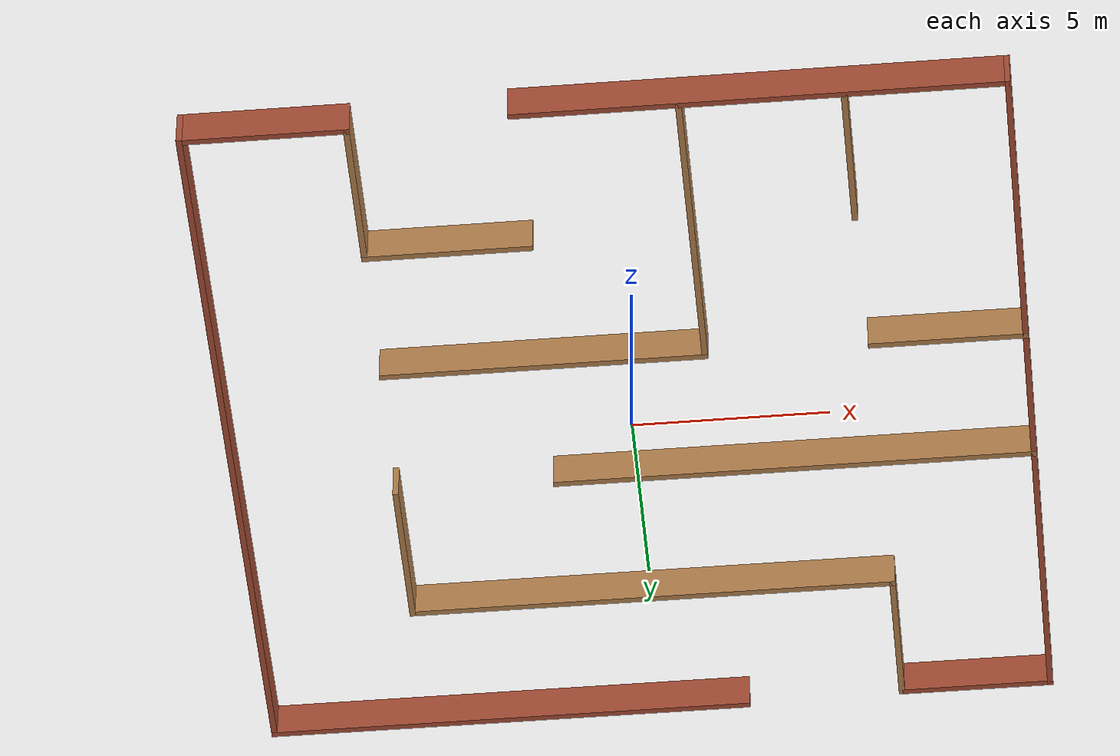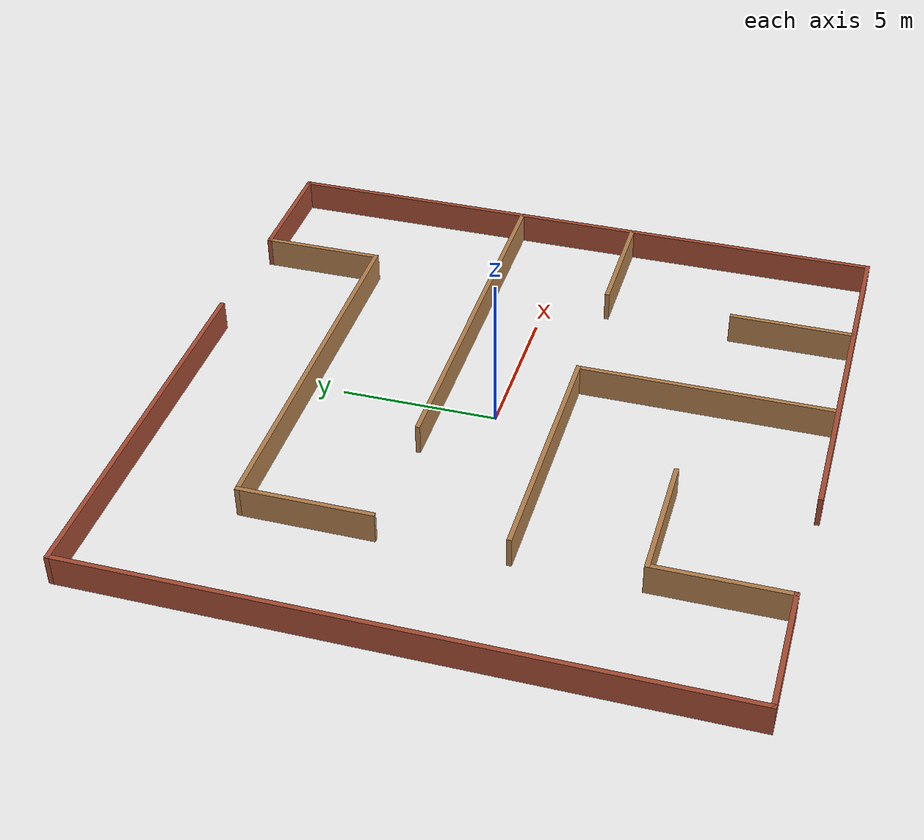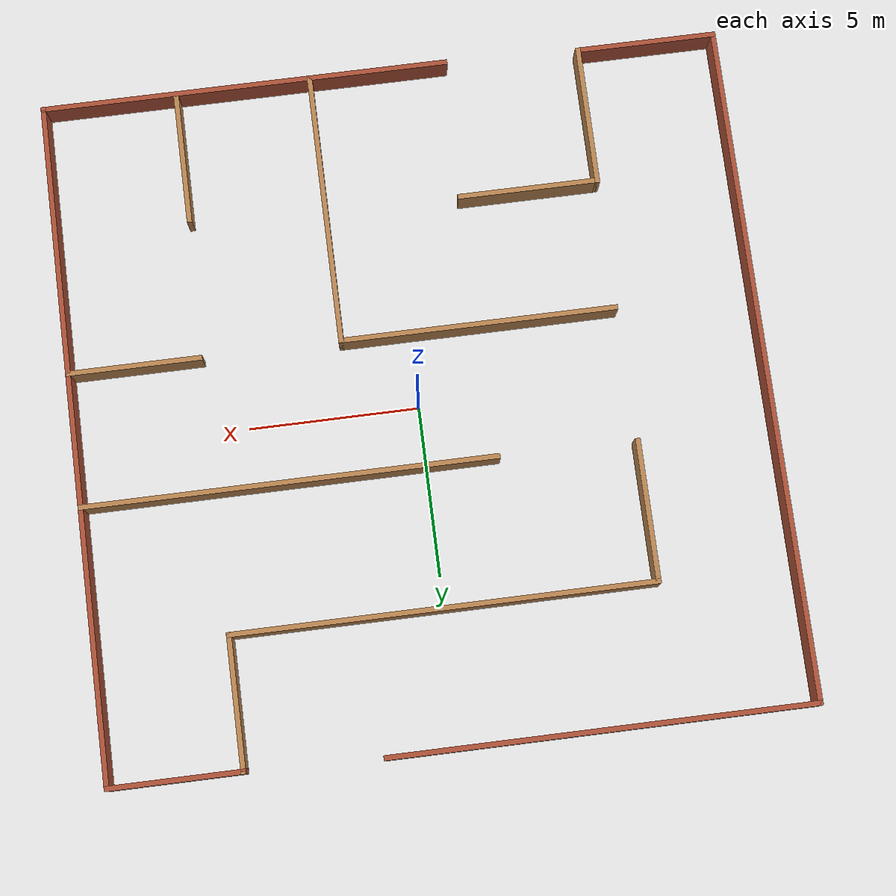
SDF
<?xml version='1.0'?>
<sdf version='1.6'>
  <model name='maze'>
    <pose frame=''>-0.085 -0.141 0 0 -0 0</pose>
    <link name='Wall_53'>
      <collision name='Wall_53_Collision'>
        <geometry>
          <box>
            <size>12.5 0.15 1</size>
          </box>
        </geometry>
        <pose frame=''>0 0 0.5 0 -0 0</pose>
      </collision>
      <visual name='Wall_53_Visual'>
        <pose frame=''>0 0 0.5 0 -0 0</pose>
        <geometry>
          <box>
            <size>12.5 0.15 1</size>
          </box>
        </geometry>
        <material>
          <script>
            <uri>file://media/materials/scripts/gazebo.material</uri>
            <name>Gazebo/Bricks</name>
          </script>
          <ambient>1 1 1 1</ambient>
        </material>
        <meta>
          <layer>0</layer>
        </meta>
      </visual>
      <pose frame=''>-3.941 10.112 0 0 -0 0</pose>
    </link>
    <link name='Wall_55'>
      <collision name='Wall_55_Collision'>
        <geometry>
          <box>
            <size>20.25 0.15 1</size>
          </box>
        </geometry>
        <pose frame=''>0 0 0.5 0 -0 0</pose>
      </collision>
      <visual name='Wall_55_Visual'>
        <pose frame=''>0 0 0.5 0 -0 0</pose>
        <geometry>
          <box>
            <size>20.25 0.15 1</size>
          </box>
        </geometry>
        <material>
          <script>
            <uri>file://media/materials/scripts/gazebo.material</uri>
            <name>Gazebo/Bricks</name>
          </script>
          <ambient>1 1 1 1</ambient>
        </material>
        <meta>
          <layer>0</layer>
        </meta>
      </visual>
      <pose frame=''>-10.116 0.062 0 0 -0 -1.5708</pose>
    </link>
    <link name='Wall_56'>
      <collision name='Wall_56_Collision'>
        <geometry>
          <box>
            <size>4.25 0.15 1</size>
          </box>
        </geometry>
        <pose frame=''>0 0 0.5 0 -0 0</pose>
      </collision>
      <visual name='Wall_56_Visual'>
        <pose frame=''>0 0 0.5 0 -0 0</pose>
        <geometry>
          <box>
            <size>4.25 0.15 1</size>
          </box>
        </geometry>
        <material>
          <script>
            <uri>file://media/materials/scripts/gazebo.material</uri>
            <name>Gazebo/Bricks</name>
          </script>
          <ambient>1 1 1 1</ambient>
        </material>
        <meta>
          <layer>0</layer>
        </meta>
      </visual>
      <pose frame=''>-8.066 -9.988 0 0 -0 0</pose>
    </link>
    <link name='Wall_57'>
      <collision name='Wall_57_Collision'>
        <geometry>
          <box>
            <size>4.25 0.15 1</size>
          </box>
        </geometry>
        <pose frame=''>0 0 0.5 0 -0 0</pose>
      </collision>
      <visual name='Wall_57_Visual'>
        <pose frame=''>0 0 0.5 0 -0 0</pose>
        <geometry>
          <box>
            <size>4.25 0.15 1</size>
          </box>
        </geometry>
        <material>
          <script>
            <uri>file://media/materials/scripts/gazebo.material</uri>
            <name>Gazebo/Wood</name>
          </script>
          <ambient>1 1 1 1</ambient>
        </material>
        <meta>
          <layer>0</layer>
        </meta>
      </visual>
      <pose frame=''>-6.016 -7.938 0 0 -0 1.5708</pose>
    </link>
    <link name='Wall_58'>
      <collision name='Wall_58_Collision'>
        <geometry>
          <box>
            <size>4.25 0.15 1</size>
          </box>
        </geometry>
        <pose frame=''>0 0 0.5 0 -0 0</pose>
      </collision>
      <visual name='Wall_58_Visual'>
        <pose frame=''>0 0 0.5 0 -0 0</pose>
        <geometry>
          <box>
            <size>4.25 0.15 1</size>
          </box>
        </geometry>
        <material>
          <script>
            <uri>file://media/materials/scripts/gazebo.material</uri>
            <name>Gazebo/Wood</name>
          </script>
          <ambient>1 1 1 1</ambient>
        </material>
        <meta>
          <layer>0</layer>
        </meta>
      </visual>
      <pose frame=''>-3.966 -5.888 0 0 -0 0</pose>
    </link>
    <link name='Wall_60'>
      <collision name='Wall_60_Collision'>
        <geometry>
          <box>
            <size>8.25 0.15 1</size>
          </box>
        </geometry>
        <pose frame=''>0 0 0.5 0 -0 0</pose>
      </collision>
      <visual name='Wall_60_Visual'>
        <pose frame=''>0 0 0.5 0 -0 0</pose>
        <geometry>
          <box>
            <size>8.25 0.15 1</size>
          </box>
        </geometry>
        <material>
          <script>
            <uri>file://media/materials/scripts/gazebo.material</uri>
            <name>Gazebo/Wood</name>
          </script>
          <ambient>1 1 1 1</ambient>
        </material>
        <meta>
          <layer>0</layer>
        </meta>
      </visual>
      <pose frame=''>-1.947 -1.979 0 0 -0 0</pose>
    </link>
    <link name='Wall_61'>
      <collision name='Wall_61_Collision'>
        <geometry>
          <box>
            <size>8.25 0.15 1</size>
          </box>
        </geometry>
        <pose frame=''>0 0 0.5 0 -0 0</pose>
      </collision>
      <visual name='Wall_61_Visual'>
        <pose frame=''>0 0 0.5 0 -0 0</pose>
        <geometry>
          <box>
            <size>8.25 0.15 1</size>
          </box>
        </geometry>
        <material>
          <script>
            <uri>file://media/materials/scripts/gazebo.material</uri>
            <name>Gazebo/Wood</name>
          </script>
          <ambient>1 1 1 1</ambient>
        </material>
        <meta>
          <layer>0</layer>
        </meta>
      </visual>
      <pose frame=''>2.103 -6.029 0 0 -0 -1.5708</pose>
    </link>
    <link name='Wall_63'>
      <collision name='Wall_63_Collision'>
        <geometry>
          <box>
            <size>12.25 0.15 1</size>
          </box>
        </geometry>
        <pose frame=''>0 0 0.5 0 -0 0</pose>
      </collision>
      <visual name='Wall_63_Visual'>
        <pose frame=''>0 0 0.5 0 -0 0</pose>
        <geometry>
          <box>
            <size>12.25 0.15 1</size>
          </box>
        </geometry>
        <material>
          <script>
            <uri>file://media/materials/scripts/gazebo.material</uri>
            <name>Gazebo/Bricks</name>
          </script>
          <ambient>1 1 1 1</ambient>
        </material>
        <meta>
          <layer>0</layer>
        </meta>
      </visual>
      <pose frame=''>4.066 -10.112 0 0 -0 0</pose>
    </link>
    <link name='Wall_64'>
      <collision name='Wall_64_Collision'>
        <geometry>
          <box>
            <size>20.25 0.15 1</size>
          </box>
        </geometry>
        <pose frame=''>0 0 0.5 0 -0 0</pose>
      </collision>
      <visual name='Wall_64_Visual'>
        <pose frame=''>0 0 0.5 0 -0 0</pose>
        <geometry>
          <box>
            <size>20.25 0.15 1</size>
          </box>
        </geometry>
        <material>
          <script>
            <uri>file://media/materials/scripts/gazebo.material</uri>
            <name>Gazebo/Bricks</name>
          </script>
          <ambient>1 1 1 1</ambient>
        </material>
        <meta>
          <layer>0</layer>
        </meta>
      </visual>
      <pose frame=''>10.116 -0.062 0 0 -0 1.5708</pose>
    </link>
    <link name='Wall_66'>
      <collision name='Wall_66_Collision'>
        <geometry>
          <box>
            <size>4 0.15 1</size>
          </box>
        </geometry>
        <pose frame=''>0 0 0.5 0 -0 0</pose>
      </collision>
      <visual name='Wall_66_Visual'>
        <pose frame=''>0 0 0.5 0 -0 0</pose>
        <geometry>
          <box>
            <size>4 0.15 1</size>
          </box>
        </geometry>
        <material>
          <script>
            <uri>file://media/materials/scripts/gazebo.material</uri>
            <name>Gazebo/Bricks</name>
          </script>
          <ambient>1 1 1 1</ambient>
        </material>
        <meta>
          <layer>0</layer>
        </meta>
      </visual>
      <pose frame=''>8.191 9.988 0 0 -0 3.14159</pose>
    </link>
    <link name='Wall_67'>
      <collision name='Wall_67_Collision'>
        <geometry>
          <box>
            <size>4 0.15 1</size>
          </box>
        </geometry>
        <pose frame=''>0 0 0.5 0 -0 0</pose>
      </collision>
      <visual name='Wall_67_Visual'>
        <pose frame=''>0 0 0.5 0 -0 0</pose>
        <geometry>
          <box>
            <size>4 0.15 1</size>
          </box>
        </geometry>
        <material>
          <script>
            <uri>file://media/materials/scripts/gazebo.material</uri>
            <name>Gazebo/Wood</name>
          </script>
          <ambient>1 1 1 1</ambient>
        </material>
        <meta>
          <layer>0</layer>
        </meta>
      </visual>
      <pose frame=''>6.266 8.063 0 0 -0 -1.5708</pose>
    </link>
    <link name='Wall_68'>
      <collision name='Wall_68_Collision'>
        <geometry>
          <box>
            <size>12.5 0.15 1</size>
          </box>
        </geometry>
        <pose frame=''>0 0 0.5 0 -0 0</pose>
      </collision>
      <visual name='Wall_68_Visual'>
        <pose frame=''>0 0 0.5 0 -0 0</pose>
        <geometry>
          <box>
            <size>12.5 0.15 1</size>
          </box>
        </geometry>
        <material>
          <script>
            <uri>file://media/materials/scripts/gazebo.material</uri>
            <name>Gazebo/Wood</name>
          </script>
          <ambient>1 1 1 1</ambient>
        </material>
        <meta>
          <layer>0</layer>
        </meta>
      </visual>
      <pose frame=''>0.091 6.138 0 0 -0 3.14159</pose>
    </link>
    <link name='Wall_70'>
      <collision name='Wall_70_Collision'>
        <geometry>
          <box>
            <size>4.25 0.15 1</size>
          </box>
        </geometry>
        <pose frame=''>0 0 0.5 0 -0 0</pose>
      </collision>
      <visual name='Wall_70_Visual'>
        <pose frame=''>0 0 0.5 0 -0 0</pose>
        <geometry>
          <box>
            <size>4.25 0.15 1</size>
          </box>
        </geometry>
        <material>
          <script>
            <uri>file://media/materials/scripts/gazebo.material</uri>
            <name>Gazebo/Wood</name>
          </script>
          <ambient>1 1 1 1</ambient>
        </material>
        <meta>
          <layer>0</layer>
        </meta>
      </visual>
      <pose frame=''>-6.084 4.088 0 0 -0 -1.5708</pose>
    </link>
    <link name='Wall_72'>
      <collision name='Wall_72_Collision'>
        <geometry>
          <box>
            <size>12.25 0.15 1</size>
          </box>
        </geometry>
        <pose frame=''>0 0 0.5 0 -0 0</pose>
      </collision>
      <visual name='Wall_72_Visual'>
        <pose frame=''>0 0 0.5 0 -0 0</pose>
        <geometry>
          <box>
            <size>12.25 0.15 1</size>
          </box>
        </geometry>
        <material>
          <script>
            <uri>file://media/materials/scripts/gazebo.material</uri>
            <name>Gazebo/Wood</name>
          </script>
          <ambient>1 1 1 1</ambient>
        </material>
        <meta>
          <layer>0</layer>
        </meta>
      </visual>
      <pose frame=''>4.057 1.98 0 0 -0 3.14159</pose>
    </link>
    <link name='Wall_74'>
      <collision name='Wall_74_Collision'>
        <geometry>
          <box>
            <size>4 0.15 1</size>
          </box>
        </geometry>
        <pose frame=''>0 0 0.5 0 -0 0</pose>
      </collision>
      <visual name='Wall_74_Visual'>
        <pose frame=''>0 0 0.5 0 -0 0</pose>
        <geometry>
          <box>
            <size>4 0.15 1</size>
          </box>
        </geometry>
        <material>
          <script>
            <uri>file://media/materials/scripts/gazebo.material</uri>
            <name>Gazebo/Wood</name>
          </script>
          <ambient>1 1 1 1</ambient>
        </material>
        <meta>
          <layer>0</layer>
        </meta>
      </visual>
      <pose frame=''>8.182 -1.979 0 0 -0 3.14159</pose>
    </link>
    <link name='Wall_78'>
      <collision name='Wall_78_Collision'>
        <geometry>
          <box>
            <size>4 0.15 1</size>
          </box>
        </geometry>
        <pose frame=''>0 0 0.5 0 -0 0</pose>
      </collision>
      <visual name='Wall_78_Visual'>
        <pose frame=''>0 0 0.5 0 -0 0</pose>
        <geometry>
          <box>
            <size>4 0.15 1</size>
          </box>
        </geometry>
        <material>
          <script>
            <uri>file://media/materials/scripts/gazebo.material</uri>
            <name>Gazebo/Wood</name>
          </script>
          <ambient>1 1 1 1</ambient>
        </material>
        <meta>
          <layer>0</layer>
        </meta>
      </visual>
      <pose frame=''>6.132 -8.104 0 0 -0 1.5708</pose>
    </link>
    <static>1</static>
  </model>
</sdf>
